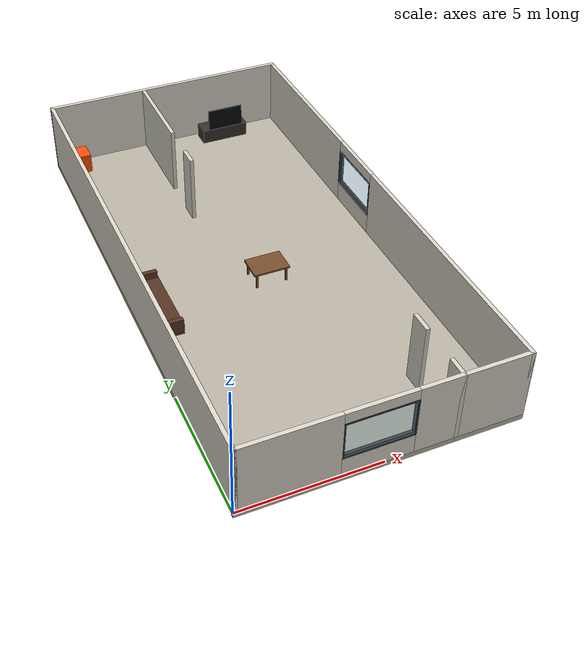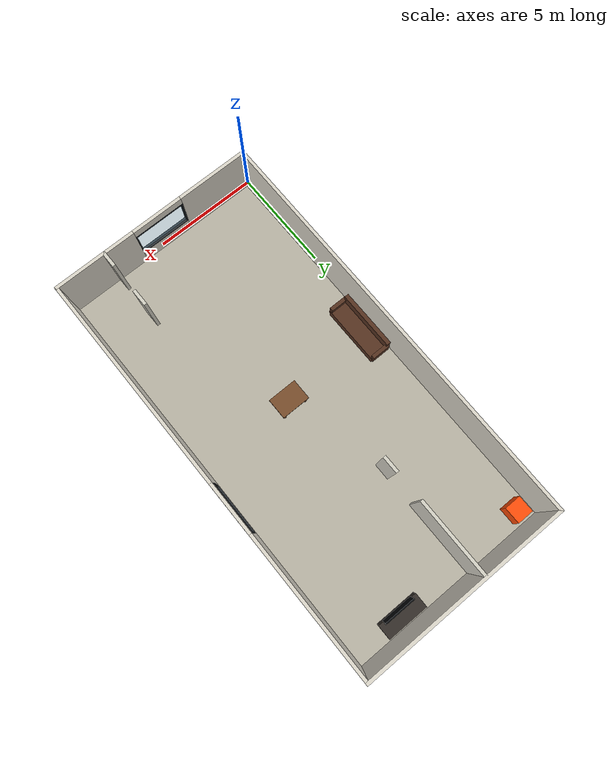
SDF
<?xml version="1.0"?>
<sdf version="1.7">
  <world name="indoor_world">
    <gravity>0 0 -9.81</gravity>
    <physics name="default_physics" type="ode">
      <max_step_size>0.001</max_step_size>
      <real_time_factor>1.0</real_time_factor>
      <real_time_update_rate>1000</real_time_update_rate>
      <ode>
        <solver>
          <type>quick</type>
          <iters>80</iters>
          <sor>1.3</sor>
        </solver>
        <constraints>
          <cfm>0.0</cfm>
          <erp>0.2</erp>
        </constraints>
      </ode>
    </physics>
    <scene>
      <ambient>0.45 0.45 0.45 1</ambient>
      <background>0.72 0.80 0.90 1</background>
      <shadows>true</shadows>
    </scene>
    <wind>0 0 0</wind>
    <gravity>0 0 -9.81</gravity>
    <model name="indoor_environment">
      <static>true</static>
      <pose>0 0 0 0 0 0</pose>
      <link name="floor_1">
        <pose>5 10 -0.1 0 0 0</pose>
        <visual name="visual">
          <geometry>
            <box>
              <size>10 20 0.2</size>
            </box>
          </geometry>
          <material>
            <ambient>0.72 0.70 0.64 1</ambient>
            <diffuse>0.72 0.70 0.64 1</diffuse>
            <specular>0.03 0.03 0.03 1</specular>
          </material>
        </visual>
        <collision name="collision">
          <geometry>
            <box>
              <size>10 20 0.2</size>
            </box>
          </geometry>
          <surface>
            <laser_retro>0.5</laser_retro>
            <friction>
              <ode>
                <mu>0.8</mu>
                <mu2>0.8</mu2>
              </ode>
            </friction>
          </surface>
        </collision>
      </link>
      <link name="outer_west_2">
        <pose>0.075 10 1.35 0 0 0</pose>
        <visual name="visual">
          <geometry>
            <box>
              <size>0.15 20 2.7</size>
            </box>
          </geometry>
          <material>
            <ambient>0.86 0.84 0.79 1</ambient>
            <diffuse>0.86 0.84 0.79 1</diffuse>
            <specular>0.03 0.03 0.03 1</specular>
          </material>
        </visual>
        <collision name="collision">
          <geometry>
            <box>
              <size>0.15 20 2.7</size>
            </box>
          </geometry>
          <surface>
            <laser_retro>0.7</laser_retro>
            <friction>
              <ode>
                <mu>0.8</mu>
                <mu2>0.8</mu2>
              </ode>
            </friction>
          </surface>
        </collision>
      </link>
      <link name="outer_north_3">
        <pose>5 19.925 1.35 0 0 0</pose>
        <visual name="visual">
          <geometry>
            <box>
              <size>10 0.15 2.7</size>
            </box>
          </geometry>
          <material>
            <ambient>0.86 0.84 0.79 1</ambient>
            <diffuse>0.86 0.84 0.79 1</diffuse>
            <specular>0.03 0.03 0.03 1</specular>
          </material>
        </visual>
        <collision name="collision">
          <geometry>
            <box>
              <size>10 0.15 2.7</size>
            </box>
          </geometry>
          <surface>
            <laser_retro>0.7</laser_retro>
            <friction>
              <ode>
                <mu>0.8</mu>
                <mu2>0.8</mu2>
              </ode>
            </friction>
          </surface>
        </collision>
      </link>
      <link name="outer_east_low_4">
        <pose>9.925 5.25 1.35 0 0 0</pose>
        <visual name="visual">
          <geometry>
            <box>
              <size>0.15 10.5 2.7</size>
            </box>
          </geometry>
          <material>
            <ambient>0.86 0.84 0.79 1</ambient>
            <diffuse>0.86 0.84 0.79 1</diffuse>
            <specular>0.03 0.03 0.03 1</specular>
          </material>
        </visual>
        <collision name="collision">
          <geometry>
            <box>
              <size>0.15 10.5 2.7</size>
            </box>
          </geometry>
          <surface>
            <laser_retro>0.7</laser_retro>
            <friction>
              <ode>
                <mu>0.8</mu>
                <mu2>0.8</mu2>
              </ode>
            </friction>
          </surface>
        </collision>
      </link>
      <link name="outer_east_high_5">
        <pose>9.925 16.5 1.35 0 0 0</pose>
        <visual name="visual">
          <geometry>
            <box>
              <size>0.15 7.0 2.7</size>
            </box>
          </geometry>
          <material>
            <ambient>0.86 0.84 0.79 1</ambient>
            <diffuse>0.86 0.84 0.79 1</diffuse>
            <specular>0.03 0.03 0.03 1</specular>
          </material>
        </visual>
        <collision name="collision">
          <geometry>
            <box>
              <size>0.15 7.0 2.7</size>
            </box>
          </geometry>
          <surface>
            <laser_retro>0.7</laser_retro>
            <friction>
              <ode>
                <mu>0.8</mu>
                <mu2>0.8</mu2>
              </ode>
            </friction>
          </surface>
        </collision>
      </link>
      <link name="outer_south_left_6">
        <pose>1.75 0.075 1.35 0 0 0</pose>
        <visual name="visual">
          <geometry>
            <box>
              <size>3.5 0.15 2.7</size>
            </box>
          </geometry>
          <material>
            <ambient>0.86 0.84 0.79 1</ambient>
            <diffuse>0.86 0.84 0.79 1</diffuse>
            <specular>0.03 0.03 0.03 1</specular>
          </material>
        </visual>
        <collision name="collision">
          <geometry>
            <box>
              <size>3.5 0.15 2.7</size>
            </box>
          </geometry>
          <surface>
            <laser_retro>0.7</laser_retro>
            <friction>
              <ode>
                <mu>0.8</mu>
                <mu2>0.8</mu2>
              </ode>
            </friction>
          </surface>
        </collision>
      </link>
      <link name="outer_south_right_7">
        <pose>8.0 0.075 1.35 0 0 0</pose>
        <visual name="visual">
          <geometry>
            <box>
              <size>4.0 0.15 2.7</size>
            </box>
          </geometry>
          <material>
            <ambient>0.86 0.84 0.79 1</ambient>
            <diffuse>0.86 0.84 0.79 1</diffuse>
            <specular>0.03 0.03 0.03 1</specular>
          </material>
        </visual>
        <collision name="collision">
          <geometry>
            <box>
              <size>4.0 0.15 2.7</size>
            </box>
          </geometry>
          <surface>
            <laser_retro>0.7</laser_retro>
            <friction>
              <ode>
                <mu>0.8</mu>
                <mu2>0.8</mu2>
              </ode>
            </friction>
          </surface>
        </collision>
      </link>
      <link name="window1_sill_8">
        <pose>4.75 0.075 0.4 0 0 0</pose>
        <visual name="visual">
          <geometry>
            <box>
              <size>2.5 0.15 0.8</size>
            </box>
          </geometry>
          <material>
            <ambient>0.86 0.84 0.79 1</ambient>
            <diffuse>0.86 0.84 0.79 1</diffuse>
            <specular>0.03 0.03 0.03 1</specular>
          </material>
        </visual>
        <collision name="collision">
          <geometry>
            <box>
              <size>2.5 0.15 0.8</size>
            </box>
          </geometry>
          <surface>
            <laser_retro>0.7</laser_retro>
            <friction>
              <ode>
                <mu>0.8</mu>
                <mu2>0.8</mu2>
              </ode>
            </friction>
          </surface>
        </collision>
      </link>
      <link name="window1_header_9">
        <pose>4.75 0.075 2.5 0 0 0</pose>
        <visual name="visual">
          <geometry>
            <box>
              <size>2.5 0.15 0.4</size>
            </box>
          </geometry>
          <material>
            <ambient>0.86 0.84 0.79 1</ambient>
            <diffuse>0.86 0.84 0.79 1</diffuse>
            <specular>0.03 0.03 0.03 1</specular>
          </material>
        </visual>
        <collision name="collision">
          <geometry>
            <box>
              <size>2.5 0.15 0.4</size>
            </box>
          </geometry>
          <surface>
            <laser_retro>0.7</laser_retro>
            <friction>
              <ode>
                <mu>0.8</mu>
                <mu2>0.8</mu2>
              </ode>
            </friction>
          </surface>
        </collision>
      </link>
      <link name="large_room_wall_low_10">
        <pose>4.0 14.4 1.35 0 0 0</pose>
        <visual name="visual">
          <geometry>
            <box>
              <size>0.15 0.8 2.7</size>
            </box>
          </geometry>
          <material>
            <ambient>0.83 0.82 0.77 1</ambient>
            <diffuse>0.83 0.82 0.77 1</diffuse>
            <specular>0.03 0.03 0.03 1</specular>
          </material>
        </visual>
        <collision name="collision">
          <geometry>
            <box>
              <size>0.15 0.8 2.7</size>
            </box>
          </geometry>
          <surface>
            <laser_retro>0.7</laser_retro>
            <friction>
              <ode>
                <mu>0.8</mu>
                <mu2>0.8</mu2>
              </ode>
            </friction>
          </surface>
        </collision>
      </link>
      <link name="large_room_wall_high_11">
        <pose>4.0 18.1 1.35 0 0 0</pose>
        <visual name="visual">
          <geometry>
            <box>
              <size>0.15 3.8 2.7</size>
            </box>
          </geometry>
          <material>
            <ambient>0.83 0.82 0.77 1</ambient>
            <diffuse>0.83 0.82 0.77 1</diffuse>
            <specular>0.03 0.03 0.03 1</specular>
          </material>
        </visual>
        <collision name="collision">
          <geometry>
            <box>
              <size>0.15 3.8 2.7</size>
            </box>
          </geometry>
          <surface>
            <laser_retro>0.7</laser_retro>
            <friction>
              <ode>
                <mu>0.8</mu>
                <mu2>0.8</mu2>
              </ode>
            </friction>
          </surface>
        </collision>
      </link>
      <link name="small_room_wall_low_12">
        <pose>7.5 0.4 1.35 0 0 0</pose>
        <visual name="visual">
          <geometry>
            <box>
              <size>0.15 0.8 2.7</size>
            </box>
          </geometry>
          <material>
            <ambient>0.83 0.82 0.77 1</ambient>
            <diffuse>0.83 0.82 0.77 1</diffuse>
            <specular>0.03 0.03 0.03 1</specular>
          </material>
        </visual>
        <collision name="collision">
          <geometry>
            <box>
              <size>0.15 0.8 2.7</size>
            </box>
          </geometry>
          <surface>
            <laser_retro>0.7</laser_retro>
            <friction>
              <ode>
                <mu>0.8</mu>
                <mu2>0.8</mu2>
              </ode>
            </friction>
          </surface>
        </collision>
      </link>
      <link name="small_room_wall_high_13">
        <pose>7.5 2.6 1.35 0 0 0</pose>
        <visual name="visual">
          <geometry>
            <box>
              <size>0.15 0.8 2.7</size>
            </box>
          </geometry>
          <material>
            <ambient>0.83 0.82 0.77 1</ambient>
            <diffuse>0.83 0.82 0.77 1</diffuse>
            <specular>0.03 0.03 0.03 1</specular>
          </material>
        </visual>
        <collision name="collision">
          <geometry>
            <box>
              <size>0.15 0.8 2.7</size>
            </box>
          </geometry>
          <surface>
            <laser_retro>0.7</laser_retro>
            <friction>
              <ode>
                <mu>0.8</mu>
                <mu2>0.8</mu2>
              </ode>
            </friction>
          </surface>
        </collision>
      </link>
      <link name="window1_glass_14">
        <pose>4.75 0.075 1.55 0 0 0</pose>
        <visual name="visual">
          <geometry>
            <box>
              <size>2.4 0.015 1.4</size>
            </box>
          </geometry>
          <material>
            <ambient>0.55 0.78 0.88 0.35</ambient>
            <diffuse>0.55 0.78 0.88 0.35</diffuse>
            <specular>0.03 0.03 0.03 1</specular>
          </material>
          <transparency>0.45</transparency>
        </visual>
        <collision name="collision">
          <geometry>
            <box>
              <size>2.4 0.015 1.4</size>
            </box>
          </geometry>
          <surface>
            <laser_retro>0.35</laser_retro>
            <friction>
              <ode>
                <mu>0.8</mu>
                <mu2>0.8</mu2>
              </ode>
            </friction>
          </surface>
        </collision>
      </link>
      <link name="window1_frame_left_15">
        <pose>3.525 0.075 1.55 0 0 0</pose>
        <visual name="visual">
          <geometry>
            <box>
              <size>0.05 0.2 1.5</size>
            </box>
          </geometry>
          <material>
            <ambient>0.18 0.20 0.22 1</ambient>
            <diffuse>0.18 0.20 0.22 1</diffuse>
            <specular>0.03 0.03 0.03 1</specular>
          </material>
        </visual>
        <collision name="collision">
          <geometry>
            <box>
              <size>0.05 0.2 1.5</size>
            </box>
          </geometry>
          <surface>
            <laser_retro>0.7</laser_retro>
            <friction>
              <ode>
                <mu>0.8</mu>
                <mu2>0.8</mu2>
              </ode>
            </friction>
          </surface>
        </collision>
      </link>
      <link name="window1_frame_right_16">
        <pose>5.975 0.075 1.55 0 0 0</pose>
        <visual name="visual">
          <geometry>
            <box>
              <size>0.05 0.2 1.5</size>
            </box>
          </geometry>
          <material>
            <ambient>0.18 0.20 0.22 1</ambient>
            <diffuse>0.18 0.20 0.22 1</diffuse>
            <specular>0.03 0.03 0.03 1</specular>
          </material>
        </visual>
        <collision name="collision">
          <geometry>
            <box>
              <size>0.05 0.2 1.5</size>
            </box>
          </geometry>
          <surface>
            <laser_retro>0.7</laser_retro>
            <friction>
              <ode>
                <mu>0.8</mu>
                <mu2>0.8</mu2>
              </ode>
            </friction>
          </surface>
        </collision>
      </link>
      <link name="window1_frame_sill_17">
        <pose>4.75 0.075 0.825 0 0 0</pose>
        <visual name="visual">
          <geometry>
            <box>
              <size>2.5 0.2 0.05</size>
            </box>
          </geometry>
          <material>
            <ambient>0.18 0.20 0.22 1</ambient>
            <diffuse>0.18 0.20 0.22 1</diffuse>
            <specular>0.03 0.03 0.03 1</specular>
          </material>
        </visual>
        <collision name="collision">
          <geometry>
            <box>
              <size>2.5 0.2 0.05</size>
            </box>
          </geometry>
          <surface>
            <laser_retro>0.7</laser_retro>
            <friction>
              <ode>
                <mu>0.8</mu>
                <mu2>0.8</mu2>
              </ode>
            </friction>
          </surface>
        </collision>
      </link>
      <link name="window1_frame_top_18">
        <pose>4.75 0.075 2.275 0 0 0</pose>
        <visual name="visual">
          <geometry>
            <box>
              <size>2.5 0.2 0.05</size>
            </box>
          </geometry>
          <material>
            <ambient>0.18 0.20 0.22 1</ambient>
            <diffuse>0.18 0.20 0.22 1</diffuse>
            <specular>0.03 0.03 0.03 1</specular>
          </material>
        </visual>
        <collision name="collision">
          <geometry>
            <box>
              <size>2.5 0.2 0.05</size>
            </box>
          </geometry>
          <surface>
            <laser_retro>0.7</laser_retro>
            <friction>
              <ode>
                <mu>0.8</mu>
                <mu2>0.8</mu2>
              </ode>
            </friction>
          </surface>
        </collision>
      </link>
      <link name="window2_sill_19">
        <pose>9.925 11.75 0.4 0 0 0</pose>
        <visual name="visual">
          <geometry>
            <box>
              <size>0.15 2.5 0.8</size>
            </box>
          </geometry>
          <material>
            <ambient>0.86 0.84 0.79 1</ambient>
            <diffuse>0.86 0.84 0.79 1</diffuse>
            <specular>0.03 0.03 0.03 1</specular>
          </material>
        </visual>
        <collision name="collision">
          <geometry>
            <box>
              <size>0.15 2.5 0.8</size>
            </box>
          </geometry>
          <surface>
            <laser_retro>0.7</laser_retro>
            <friction>
              <ode>
                <mu>0.8</mu>
                <mu2>0.8</mu2>
              </ode>
            </friction>
          </surface>
        </collision>
      </link>
      <link name="window2_header_20">
        <pose>9.925 11.75 2.5 0 0 0</pose>
        <visual name="visual">
          <geometry>
            <box>
              <size>0.15 2.5 0.4</size>
            </box>
          </geometry>
          <material>
            <ambient>0.86 0.84 0.79 1</ambient>
            <diffuse>0.86 0.84 0.79 1</diffuse>
            <specular>0.03 0.03 0.03 1</specular>
          </material>
        </visual>
        <collision name="collision">
          <geometry>
            <box>
              <size>0.15 2.5 0.4</size>
            </box>
          </geometry>
          <surface>
            <laser_retro>0.7</laser_retro>
            <friction>
              <ode>
                <mu>0.8</mu>
                <mu2>0.8</mu2>
              </ode>
            </friction>
          </surface>
        </collision>
      </link>
      <link name="window2_glass_21">
        <pose>9.925 11.75 1.55 0 0 0</pose>
        <visual name="visual">
          <geometry>
            <box>
              <size>0.015 2.4 1.4</size>
            </box>
          </geometry>
          <material>
            <ambient>0.55 0.78 0.88 0.35</ambient>
            <diffuse>0.55 0.78 0.88 0.35</diffuse>
            <specular>0.03 0.03 0.03 1</specular>
          </material>
          <transparency>0.45</transparency>
        </visual>
        <collision name="collision">
          <geometry>
            <box>
              <size>0.015 2.4 1.4</size>
            </box>
          </geometry>
          <surface>
            <laser_retro>0.35</laser_retro>
            <friction>
              <ode>
                <mu>0.8</mu>
                <mu2>0.8</mu2>
              </ode>
            </friction>
          </surface>
        </collision>
      </link>
      <link name="window2_frame_low_22">
        <pose>9.925 10.525 1.55 0 0 0</pose>
        <visual name="visual">
          <geometry>
            <box>
              <size>0.2 0.05 1.5</size>
            </box>
          </geometry>
          <material>
            <ambient>0.18 0.20 0.22 1</ambient>
            <diffuse>0.18 0.20 0.22 1</diffuse>
            <specular>0.03 0.03 0.03 1</specular>
          </material>
        </visual>
        <collision name="collision">
          <geometry>
            <box>
              <size>0.2 0.05 1.5</size>
            </box>
          </geometry>
          <surface>
            <laser_retro>0.7</laser_retro>
            <friction>
              <ode>
                <mu>0.8</mu>
                <mu2>0.8</mu2>
              </ode>
            </friction>
          </surface>
        </collision>
      </link>
      <link name="window2_frame_high_23">
        <pose>9.925 12.975 1.55 0 0 0</pose>
        <visual name="visual">
          <geometry>
            <box>
              <size>0.2 0.05 1.5</size>
            </box>
          </geometry>
          <material>
            <ambient>0.18 0.20 0.22 1</ambient>
            <diffuse>0.18 0.20 0.22 1</diffuse>
            <specular>0.03 0.03 0.03 1</specular>
          </material>
        </visual>
        <collision name="collision">
          <geometry>
            <box>
              <size>0.2 0.05 1.5</size>
            </box>
          </geometry>
          <surface>
            <laser_retro>0.7</laser_retro>
            <friction>
              <ode>
                <mu>0.8</mu>
                <mu2>0.8</mu2>
              </ode>
            </friction>
          </surface>
        </collision>
      </link>
      <link name="window2_frame_sill_24">
        <pose>9.925 11.75 0.825 0 0 0</pose>
        <visual name="visual">
          <geometry>
            <box>
              <size>0.2 2.5 0.05</size>
            </box>
          </geometry>
          <material>
            <ambient>0.18 0.20 0.22 1</ambient>
            <diffuse>0.18 0.20 0.22 1</diffuse>
            <specular>0.03 0.03 0.03 1</specular>
          </material>
        </visual>
        <collision name="collision">
          <geometry>
            <box>
              <size>0.2 2.5 0.05</size>
            </box>
          </geometry>
          <surface>
            <laser_retro>0.7</laser_retro>
            <friction>
              <ode>
                <mu>0.8</mu>
                <mu2>0.8</mu2>
              </ode>
            </friction>
          </surface>
        </collision>
      </link>
      <link name="window2_frame_top_25">
        <pose>9.925 11.75 2.275 0 0 0</pose>
        <visual name="visual">
          <geometry>
            <box>
              <size>0.2 2.5 0.05</size>
            </box>
          </geometry>
          <material>
            <ambient>0.18 0.20 0.22 1</ambient>
            <diffuse>0.18 0.20 0.22 1</diffuse>
            <specular>0.03 0.03 0.03 1</specular>
          </material>
        </visual>
        <collision name="collision">
          <geometry>
            <box>
              <size>0.2 2.5 0.05</size>
            </box>
          </geometry>
          <surface>
            <laser_retro>0.7</laser_retro>
            <friction>
              <ode>
                <mu>0.8</mu>
                <mu2>0.8</mu2>
              </ode>
            </friction>
          </surface>
        </collision>
      </link>
      <link name="sofa_seat_26">
        <pose>0.82 9.0 0.42 0 0 0</pose>
        <visual name="visual">
          <geometry>
            <box>
              <size>0.92 2.85 0.42</size>
            </box>
          </geometry>
          <material>
            <ambient>0.34 0.20 0.13 1</ambient>
            <diffuse>0.34 0.20 0.13 1</diffuse>
            <specular>0.03 0.03 0.03 1</specular>
          </material>
        </visual>
        <collision name="collision">
          <geometry>
            <box>
              <size>0.92 2.85 0.42</size>
            </box>
          </geometry>
          <surface>
            <laser_retro>0.8</laser_retro>
            <friction>
              <ode>
                <mu>0.8</mu>
                <mu2>0.8</mu2>
              </ode>
            </friction>
          </surface>
        </collision>
      </link>
      <link name="sofa_back_27">
        <pose>0.38 9.0 0.78 0 0 0</pose>
        <visual name="visual">
          <geometry>
            <box>
              <size>0.2 2.85 0.7</size>
            </box>
          </geometry>
          <material>
            <ambient>0.34 0.20 0.13 1</ambient>
            <diffuse>0.34 0.20 0.13 1</diffuse>
            <specular>0.03 0.03 0.03 1</specular>
          </material>
        </visual>
        <collision name="collision">
          <geometry>
            <box>
              <size>0.2 2.85 0.7</size>
            </box>
          </geometry>
          <surface>
            <laser_retro>0.8</laser_retro>
            <friction>
              <ode>
                <mu>0.8</mu>
                <mu2>0.8</mu2>
              </ode>
            </friction>
          </surface>
        </collision>
      </link>
      <link name="sofa_arm_left_28">
        <pose>0.8 7.6 0.62 0 0 0</pose>
        <visual name="visual">
          <geometry>
            <box>
              <size>0.9 0.18 0.55</size>
            </box>
          </geometry>
          <material>
            <ambient>0.34 0.20 0.13 1</ambient>
            <diffuse>0.34 0.20 0.13 1</diffuse>
            <specular>0.03 0.03 0.03 1</specular>
          </material>
        </visual>
        <collision name="collision">
          <geometry>
            <box>
              <size>0.9 0.18 0.55</size>
            </box>
          </geometry>
          <surface>
            <laser_retro>0.8</laser_retro>
            <friction>
              <ode>
                <mu>0.8</mu>
                <mu2>0.8</mu2>
              </ode>
            </friction>
          </surface>
        </collision>
      </link>
      <link name="sofa_arm_right_29">
        <pose>0.8 10.4 0.62 0 0 0</pose>
        <visual name="visual">
          <geometry>
            <box>
              <size>0.9 0.18 0.55</size>
            </box>
          </geometry>
          <material>
            <ambient>0.34 0.20 0.13 1</ambient>
            <diffuse>0.34 0.20 0.13 1</diffuse>
            <specular>0.03 0.03 0.03 1</specular>
          </material>
        </visual>
        <collision name="collision">
          <geometry>
            <box>
              <size>0.9 0.18 0.55</size>
            </box>
          </geometry>
          <surface>
            <laser_retro>0.8</laser_retro>
            <friction>
              <ode>
                <mu>0.8</mu>
                <mu2>0.8</mu2>
              </ode>
            </friction>
          </surface>
        </collision>
      </link>
      <link name="tv_stand_30">
        <pose>7.3 19.35 0.3 0 0 0</pose>
        <visual name="visual">
          <geometry>
            <box>
              <size>2.0 0.7 0.6</size>
            </box>
          </geometry>
          <material>
            <ambient>0.20 0.18 0.16 1</ambient>
            <diffuse>0.20 0.18 0.16 1</diffuse>
            <specular>0.03 0.03 0.03 1</specular>
          </material>
        </visual>
        <collision name="collision">
          <geometry>
            <box>
              <size>2.0 0.7 0.6</size>
            </box>
          </geometry>
          <surface>
            <laser_retro>0.6</laser_retro>
            <friction>
              <ode>
                <mu>0.8</mu>
                <mu2>0.8</mu2>
              </ode>
            </friction>
          </surface>
        </collision>
      </link>
      <link name="tv_screen_31">
        <pose>7.3 18.975 1.1 0 0 0</pose>
        <visual name="visual">
          <geometry>
            <box>
              <size>1.5 0.06 0.9</size>
            </box>
          </geometry>
          <material>
            <ambient>0.025 0.03 0.04 1</ambient>
            <diffuse>0.025 0.03 0.04 1</diffuse>
            <specular>0.03 0.03 0.03 1</specular>
          </material>
        </visual>
        <collision name="collision">
          <geometry>
            <box>
              <size>1.5 0.06 0.9</size>
            </box>
          </geometry>
          <surface>
            <laser_retro>0.2</laser_retro>
            <friction>
              <ode>
                <mu>0.8</mu>
                <mu2>0.8</mu2>
              </ode>
            </friction>
          </surface>
        </collision>
      </link>
      <link name="table_top_32">
        <pose>5.2 9.5 0.615 0 0 0</pose>
        <visual name="visual">
          <geometry>
            <box>
              <size>1.4 1.0 0.07</size>
            </box>
          </geometry>
          <material>
            <ambient>0.47 0.30 0.17 1</ambient>
            <diffuse>0.47 0.30 0.17 1</diffuse>
            <specular>0.03 0.03 0.03 1</specular>
          </material>
        </visual>
        <collision name="collision">
          <geometry>
            <box>
              <size>1.4 1.0 0.07</size>
            </box>
          </geometry>
          <surface>
            <laser_retro>0.7</laser_retro>
            <friction>
              <ode>
                <mu>0.8</mu>
                <mu2>0.8</mu2>
              </ode>
            </friction>
          </surface>
        </collision>
      </link>
      <link name="table_leg_0_0_33">
        <pose>4.62 9.08 0.3 0 0 0</pose>
        <visual name="visual">
          <geometry>
            <box>
              <size>0.07 0.07 0.6</size>
            </box>
          </geometry>
          <material>
            <ambient>0.47 0.30 0.17 1</ambient>
            <diffuse>0.47 0.30 0.17 1</diffuse>
            <specular>0.03 0.03 0.03 1</specular>
          </material>
        </visual>
        <collision name="collision">
          <geometry>
            <box>
              <size>0.07 0.07 0.6</size>
            </box>
          </geometry>
          <surface>
            <laser_retro>0.7</laser_retro>
            <friction>
              <ode>
                <mu>0.8</mu>
                <mu2>0.8</mu2>
              </ode>
            </friction>
          </surface>
        </collision>
      </link>
      <link name="table_leg_0_1_34">
        <pose>4.62 9.92 0.3 0 0 0</pose>
        <visual name="visual">
          <geometry>
            <box>
              <size>0.07 0.07 0.6</size>
            </box>
          </geometry>
          <material>
            <ambient>0.47 0.30 0.17 1</ambient>
            <diffuse>0.47 0.30 0.17 1</diffuse>
            <specular>0.03 0.03 0.03 1</specular>
          </material>
        </visual>
        <collision name="collision">
          <geometry>
            <box>
              <size>0.07 0.07 0.6</size>
            </box>
          </geometry>
          <surface>
            <laser_retro>0.7</laser_retro>
            <friction>
              <ode>
                <mu>0.8</mu>
                <mu2>0.8</mu2>
              </ode>
            </friction>
          </surface>
        </collision>
      </link>
      <link name="table_leg_1_0_35">
        <pose>5.78 9.08 0.3 0 0 0</pose>
        <visual name="visual">
          <geometry>
            <box>
              <size>0.07 0.07 0.6</size>
            </box>
          </geometry>
          <material>
            <ambient>0.47 0.30 0.17 1</ambient>
            <diffuse>0.47 0.30 0.17 1</diffuse>
            <specular>0.03 0.03 0.03 1</specular>
          </material>
        </visual>
        <collision name="collision">
          <geometry>
            <box>
              <size>0.07 0.07 0.6</size>
            </box>
          </geometry>
          <surface>
            <laser_retro>0.7</laser_retro>
            <friction>
              <ode>
                <mu>0.8</mu>
                <mu2>0.8</mu2>
              </ode>
            </friction>
          </surface>
        </collision>
      </link>
      <link name="table_leg_1_1_36">
        <pose>5.78 9.92 0.3 0 0 0</pose>
        <visual name="visual">
          <geometry>
            <box>
              <size>0.07 0.07 0.6</size>
            </box>
          </geometry>
          <material>
            <ambient>0.47 0.30 0.17 1</ambient>
            <diffuse>0.47 0.30 0.17 1</diffuse>
            <specular>0.03 0.03 0.03 1</specular>
          </material>
        </visual>
        <collision name="collision">
          <geometry>
            <box>
              <size>0.07 0.07 0.6</size>
            </box>
          </geometry>
          <surface>
            <laser_retro>0.7</laser_retro>
            <friction>
              <ode>
                <mu>0.8</mu>
                <mu2>0.8</mu2>
              </ode>
            </friction>
          </surface>
        </collision>
      </link>
      <link name="orange_box_37">
        <pose>0.8 19.2 0.4 0 0 0</pose>
        <visual name="visual">
          <geometry>
            <box>
              <size>0.8 0.8 0.8</size>
            </box>
          </geometry>
          <material>
            <ambient>1 0.30 0.03 1</ambient>
            <diffuse>1 0.30 0.03 1</diffuse>
            <specular>0.03 0.03 0.03 1</specular>
          </material>
        </visual>
        <collision name="collision">
          <geometry>
            <box>
              <size>0.8 0.8 0.8</size>
            </box>
          </geometry>
          <surface>
            <laser_retro>0.8</laser_retro>
            <friction>
              <ode>
                <mu>0.8</mu>
                <mu2>0.8</mu2>
              </ode>
            </friction>
          </surface>
        </collision>
      </link>
    </model>
    <light name="ceiling_area" type="point">
      <pose>5 10 2.55 0 0 0</pose>
      <diffuse>0.95 0.94 0.88 1</diffuse>
      <specular>0.15 0.15 0.15 1</specular>
      <attenuation>
        <range>35</range>
        <constant>0.6</constant>
        <linear>0.01</linear>
        <quadratic>0.001</quadratic>
      </attenuation>
    </light>
  </world>
</sdf>
